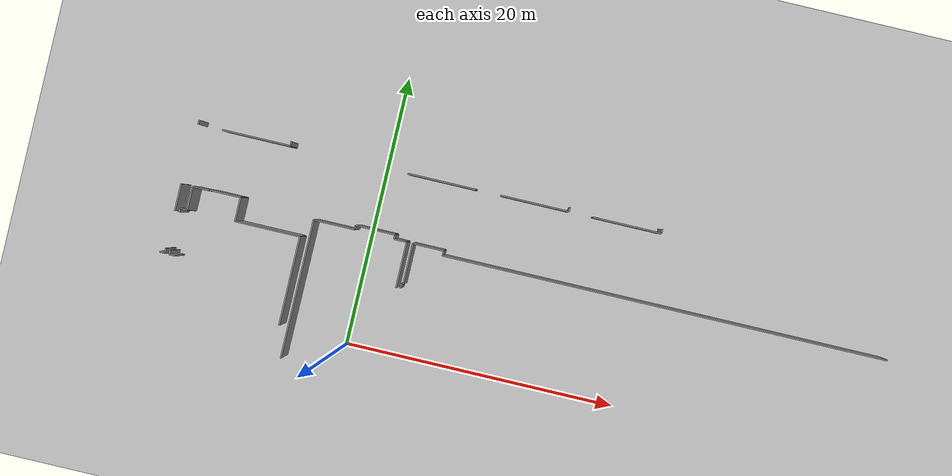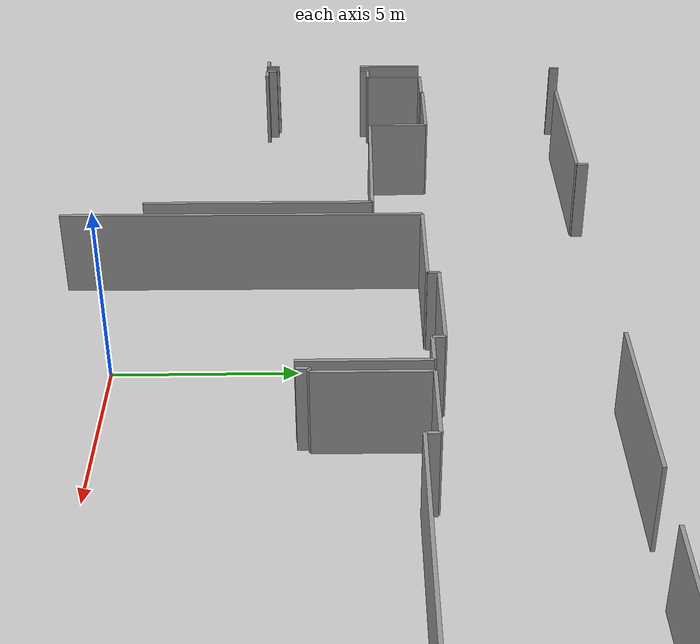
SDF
<sdf version="1.6">
 <world name="default">
  <model name="ground_plane">
   <static>1</static>
   <link name="link">
    <collision name="collision">
     <geometry><plane><normal>0 0 1</normal><size>100 100</size></plane></geometry>
     <surface><friction><ode><mu>100</mu><mu2>50</mu2></ode></friction></surface>
    </collision>
    <visual name="visual">
     <cast_shadows>0</cast_shadows>
     <geometry><plane><normal>0 0 1</normal><size>100 100</size></plane></geometry>
     <material>
      <script><uri>file://media/materials/scripts/gazebo.material</uri><name>Gazebo/Grey</name></script>
     </material>
    </visual>
   </link>
  </model>
  <model name="0510032197_A_40_1_105">
   <static>1</static>
   <link name="Wall_241">
    <collision name="Wall_241_Collision">
     <geometry><box><size>0.334396725937 0.1 2.5</size></box></geometry>
     <pose>0.167198362969 0 1.25 0 0 0</pose>
    </collision>
    <visual name="Wall_241_Visual">
     <pose>0.167198362969 0 1.25 0 0 0</pose>
     <geometry><box><size>0.334396725937 0.1 2.5</size></box></geometry>
     <material>
      <script><uri>file://media/materials/scripts/gazebo.material</uri><name>Gazebo/Grey</name></script>
      <ambient>1 1 1 1</ambient>
     </material>
    </visual>
    <pose>68.585137076 -19.1142490372 0 0 0 1.57079632679</pose>
   </link>
   <link name="Wall_242">
    <collision name="Wall_242_Collision">
     <geometry><box><size>0.142096366248 0.1 2.5</size></box></geometry>
     <pose>0.0710481831238 0 1.25 0 0 0</pose>
    </collision>
    <visual name="Wall_242_Visual">
     <pose>0.0710481831238 0 1.25 0 0 0</pose>
     <geometry><box><size>0.142096366248 0.1 2.5</size></box></geometry>
     <material>
      <script><uri>file://media/materials/scripts/gazebo.material</uri><name>Gazebo/Grey</name></script>
      <ambient>1 1 1 1</ambient>
     </material>
    </visual>
    <pose>68.585137076 -18.7798523113 0 0 0 0.0</pose>
   </link>
   <link name="Wall_243">
    <collision name="Wall_243_Collision">
     <geometry><box><size>3.00829954626 0.1 2.5</size></box></geometry>
     <pose>1.50414977313 0 1.25 0 0 0</pose>
    </collision>
    <visual name="Wall_243_Visual">
     <pose>1.50414977313 0 1.25 0 0 0</pose>
     <geometry><box><size>3.00829954626 0.1 2.5</size></box></geometry>
     <material>
      <script><uri>file://media/materials/scripts/gazebo.material</uri><name>Gazebo/Grey</name></script>
      <ambient>1 1 1 1</ambient>
     </material>
    </visual>
    <pose>68.7272334422 -18.7798523113 0 0 0 1.57079632679</pose>
   </link>
   <link name="Wall_244">
    <collision name="Wall_244_Collision">
     <geometry><box><size>2.28040519071 0.1 2.5</size></box></geometry>
     <pose>1.14020259536 0 1.25 0 0 0</pose>
    </collision>
    <visual name="Wall_244_Visual">
     <pose>1.14020259536 0 1.25 0 0 0</pose>
     <geometry><box><size>2.28040519071 0.1 2.5</size></box></geometry>
     <material>
      <script><uri>file://media/materials/scripts/gazebo.material</uri><name>Gazebo/Grey</name></script>
      <ambient>1 1 1 1</ambient>
     </material>
    </visual>
    <pose>68.7272334422 -15.771552765 0 0 0 0.0</pose>
   </link>
   <link name="Wall_245">
    <collision name="Wall_245_Collision">
     <geometry><box><size>0.358418383559 0.1 2.5</size></box></geometry>
     <pose>0.179209191779 0 1.25 0 0 0</pose>
    </collision>
    <visual name="Wall_245_Visual">
     <pose>0.179209191779 0 1.25 0 0 0</pose>
     <geometry><box><size>0.358418383559 0.1 2.5</size></box></geometry>
     <material>
      <script><uri>file://media/materials/scripts/gazebo.material</uri><name>Gazebo/Grey</name></script>
      <ambient>1 1 1 1</ambient>
     </material>
    </visual>
    <pose>71.0076386329 -15.771552765 0 0 0 -1.57079632679</pose>
   </link>
   <link name="Wall_246">
    <collision name="Wall_246_Collision">
     <geometry><box><size>32.7894355546 0.1 2.5</size></box></geometry>
     <pose>16.3947177773 0 1.25 0 0 0</pose>
    </collision>
    <visual name="Wall_246_Visual">
     <pose>16.3947177773 0 1.25 0 0 0</pose>
     <geometry><box><size>32.7894355546 0.1 2.5</size></box></geometry>
     <material>
      <script><uri>file://media/materials/scripts/gazebo.material</uri><name>Gazebo/Grey</name></script>
      <ambient>1 1 1 1</ambient>
     </material>
    </visual>
    <pose>71.0076386329 -16.1299711486 0 0 0 0.0</pose>
   </link>
   <link name="Wall_266">
    <collision name="Wall_266_Collision">
     <geometry><box><size>3.37841101183 0.1 2.5</size></box></geometry>
     <pose>1.68920550592 0 1.25 0 0 0</pose>
    </collision>
    <visual name="Wall_266_Visual">
     <pose>1.68920550592 0 1.25 0 0 0</pose>
     <geometry><box><size>3.37841101183 0.1 2.5</size></box></geometry>
     <material>
      <script><uri>file://media/materials/scripts/gazebo.material</uri><name>Gazebo/Grey</name></script>
      <ambient>1 1 1 1</ambient>
     </material>
    </visual>
    <pose>68.2809898448 -19.1476759999 0 0 0 1.57079632679</pose>
   </link>
   <link name="Wall_267">
    <collision name="Wall_267_Collision">
     <geometry><box><size>0.937353042108 0.1 2.5</size></box></geometry>
     <pose>0.468676521054 0 1.25 0 0 0</pose>
    </collision>
    <visual name="Wall_267_Visual">
     <pose>0.468676521054 0 1.25 0 0 0</pose>
     <geometry><box><size>0.937353042108 0.1 2.5</size></box></geometry>
     <material>
      <script><uri>file://media/materials/scripts/gazebo.material</uri><name>Gazebo/Grey</name></script>
      <ambient>1 1 1 1</ambient>
     </material>
    </visual>
    <pose>68.2809898448 -15.7692649881 0 0 0 3.14159265359</pose>
   </link>
   <link name="Wall_268">
    <collision name="Wall_268_Collision">
     <geometry><box><size>0.319780373416 0.1 2.5</size></box></geometry>
     <pose>0.159890186708 0 1.25 0 0 0</pose>
    </collision>
    <visual name="Wall_268_Visual">
     <pose>0.159890186708 0 1.25 0 0 0</pose>
     <geometry><box><size>0.319780373416 0.1 2.5</size></box></geometry>
     <material>
      <script><uri>file://media/materials/scripts/gazebo.material</uri><name>Gazebo/Grey</name></script>
      <ambient>1 1 1 1</ambient>
     </material>
    </visual>
    <pose>67.3436368027 -15.7692649881 0 0 0 1.57079632679</pose>
   </link>
   <link name="Wall_269">
    <collision name="Wall_269_Collision">
     <geometry><box><size>2.90102822863 0.1 2.5</size></box></geometry>
     <pose>1.45051411431 0 1.25 0 0 0</pose>
    </collision>
    <visual name="Wall_269_Visual">
     <pose>1.45051411431 0 1.25 0 0 0</pose>
     <geometry><box><size>2.90102822863 0.1 2.5</size></box></geometry>
     <material>
      <script><uri>file://media/materials/scripts/gazebo.material</uri><name>Gazebo/Grey</name></script>
      <ambient>1 1 1 1</ambient>
     </material>
    </visual>
    <pose>67.3436368027 -15.4494846147 0 0 0 3.14159265359</pose>
   </link>
   <link name="Wall_270">
    <collision name="Wall_270_Collision">
     <geometry><box><size>0.303130441414 0.1 2.5</size></box></geometry>
     <pose>0.151565220707 0 1.25 0 0 0</pose>
    </collision>
    <visual name="Wall_270_Visual">
     <pose>0.151565220707 0 1.25 0 0 0</pose>
     <geometry><box><size>0.303130441414 0.1 2.5</size></box></geometry>
     <material>
      <script><uri>file://media/materials/scripts/gazebo.material</uri><name>Gazebo/Grey</name></script>
      <ambient>1 1 1 1</ambient>
     </material>
    </visual>
    <pose>64.4426085741 -15.4494846147 0 0 0 -1.57079632679</pose>
   </link>
   <link name="Wall_271">
    <collision name="Wall_271_Collision">
     <geometry><box><size>3.02228040519 0.1 2.5</size></box></geometry>
     <pose>1.5111402026 0 1.25 0 0 0</pose>
    </collision>
    <visual name="Wall_271_Visual">
     <pose>1.5111402026 0 1.25 0 0 0</pose>
     <geometry><box><size>3.02228040519 0.1 2.5</size></box></geometry>
     <material>
      <script><uri>file://media/materials/scripts/gazebo.material</uri><name>Gazebo/Grey</name></script>
      <ambient>1 1 1 1</ambient>
     </material>
    </visual>
    <pose>64.4426085741 -15.7526150561 0 0 0 3.14159265359</pose>
   </link>
   <link name="Wall_272">
    <collision name="Wall_272_Collision">
     <geometry><box><size>10.2004776654 0.1 2.5</size></box></geometry>
     <pose>5.10023883268 0 1.25 0 0 0</pose>
    </collision>
    <visual name="Wall_272_Visual">
     <pose>5.10023883268 0 1.25 0 0 0</pose>
     <geometry><box><size>10.2004776654 0.1 2.5</size></box></geometry>
     <material>
      <script><uri>file://media/materials/scripts/gazebo.material</uri><name>Gazebo/Grey</name></script>
      <ambient>1 1 1 1</ambient>
     </material>
    </visual>
    <pose>61.4203281689 -15.7526150561 0 0 0 -1.57369952837</pose>
   </link>
   <link name="Wall_274">
    <collision name="Wall_274_Collision">
     <geometry><box><size>0.429720764117 0.1 2.5</size></box></geometry>
     <pose>0.214860382059 0 1.25 0 0 0</pose>
    </collision>
    <visual name="Wall_274_Visual">
     <pose>0.214860382059 0 1.25 0 0 0</pose>
     <geometry><box><size>0.429720764117 0.1 2.5</size></box></geometry>
     <material>
      <script><uri>file://media/materials/scripts/gazebo.material</uri><name>Gazebo/Grey</name></script>
      <ambient>1 1 1 1</ambient>
     </material>
    </visual>
    <pose>52.3396331931 -20.5408050433 0 0 0 3.14159265359</pose>
   </link>
   <link name="Wall_275">
    <collision name="Wall_275_Collision">
     <geometry><box><size>0.309739574728 0.1 2.5</size></box></geometry>
     <pose>0.154869787364 0 1.25 0 0 0</pose>
    </collision>
    <visual name="Wall_275_Visual">
     <pose>0.154869787364 0 1.25 0 0 0</pose>
     <geometry><box><size>0.309739574728 0.1 2.5</size></box></geometry>
     <material>
      <script><uri>file://media/materials/scripts/gazebo.material</uri><name>Gazebo/Grey</name></script>
      <ambient>1 1 1 1</ambient>
     </material>
    </visual>
    <pose>51.909912429 -20.5408050433 0 0 0 1.57079632679</pose>
   </link>
   <link name="Wall_276">
    <collision name="Wall_276_Collision">
     <geometry><box><size>0.263729838966 0.1 2.5</size></box></geometry>
     <pose>0.131864919483 0 1.25 0 0 0</pose>
    </collision>
    <visual name="Wall_276_Visual">
     <pose>0.131864919483 0 1.25 0 0 0</pose>
     <geometry><box><size>0.263729838966 0.1 2.5</size></box></geometry>
     <material>
      <script><uri>file://media/materials/scripts/gazebo.material</uri><name>Gazebo/Grey</name></script>
      <ambient>1 1 1 1</ambient>
     </material>
    </visual>
    <pose>51.909912429 -17.4240902909 0 0 0 1.57079632679</pose>
   </link>
   <link name="Wall_277">
    <collision name="Wall_277_Collision">
     <geometry><box><size>0.515385299762 0.1 2.5</size></box></geometry>
     <pose>0.257692649881 0 1.25 0 0 0</pose>
    </collision>
    <visual name="Wall_277_Visual">
     <pose>0.257692649881 0 1.25 0 0 0</pose>
     <geometry><box><size>0.515385299762 0.1 2.5</size></box></geometry>
     <material>
      <script><uri>file://media/materials/scripts/gazebo.material</uri><name>Gazebo/Grey</name></script>
      <ambient>1 1 1 1</ambient>
     </material>
    </visual>
    <pose>51.909912429 -17.160360452 0 0 0 0.0</pose>
   </link>
   <link name="Wall_278">
    <collision name="Wall_278_Collision">
     <geometry><box><size>1.73095743464 0.1 2.5</size></box></geometry>
     <pose>0.86547871732 0 1.25 0 0 0</pose>
    </collision>
    <visual name="Wall_278_Visual">
     <pose>0.86547871732 0 1.25 0 0 0</pose>
     <geometry><box><size>1.73095743464 0.1 2.5</size></box></geometry>
     <material>
      <script><uri>file://media/materials/scripts/gazebo.material</uri><name>Gazebo/Grey</name></script>
      <ambient>1 1 1 1</ambient>
     </material>
    </visual>
    <pose>52.4252977287 -17.160360452 0 0 0 1.57079632679</pose>
   </link>
   <link name="Wall_279">
    <collision name="Wall_279_Collision">
     <geometry><box><size>1.21442824642 0.1 2.5</size></box></geometry>
     <pose>0.607214123209 0 1.25 0 0 0</pose>
    </collision>
    <visual name="Wall_279_Visual">
     <pose>0.607214123209 0 1.25 0 0 0</pose>
     <geometry><box><size>1.21442824642 0.1 2.5</size></box></geometry>
     <material>
      <script><uri>file://media/materials/scripts/gazebo.material</uri><name>Gazebo/Grey</name></script>
      <ambient>1 1 1 1</ambient>
     </material>
    </visual>
    <pose>52.4252977287 -15.4294030173 0 0 0 0.0</pose>
   </link>
   <link name="Wall_280">
    <collision name="Wall_280_Collision">
     <geometry><box><size>0.0383838127073 0.1 2.5</size></box></geometry>
     <pose>0.0191919063537 0 1.25 0 0 0</pose>
    </collision>
    <visual name="Wall_280_Visual">
     <pose>0.0191919063537 0 1.25 0 0 0</pose>
     <geometry><box><size>0.0383838127073 0.1 2.5</size></box></geometry>
     <material>
      <script><uri>file://media/materials/scripts/gazebo.material</uri><name>Gazebo/Grey</name></script>
      <ambient>1 1 1 1</ambient>
     </material>
    </visual>
    <pose>53.6397259752 -15.4294030173 0 0 0 1.57079632679</pose>
   </link>
   <link name="Wall_281">
    <collision name="Wall_281_Collision">
     <geometry><box><size>2.31332375856 0.1 2.5</size></box></geometry>
     <pose>1.15666187928 0 1.25 0 0 0</pose>
    </collision>
    <visual name="Wall_281_Visual">
     <pose>1.15666187928 0 1.25 0 0 0</pose>
     <geometry><box><size>2.31332375856 0.1 2.5</size></box></geometry>
     <material>
      <script><uri>file://media/materials/scripts/gazebo.material</uri><name>Gazebo/Grey</name></script>
      <ambient>1 1 1 1</ambient>
     </material>
    </visual>
    <pose>53.6397259752 -15.3910192046 0 0 0 0.0</pose>
   </link>
   <link name="Wall_282">
    <collision name="Wall_282_Collision">
     <geometry><box><size>1.75637717815 0.1 2.5</size></box></geometry>
     <pose>0.878188589077 0 1.25 0 0 0</pose>
    </collision>
    <visual name="Wall_282_Visual">
     <pose>0.878188589077 0 1.25 0 0 0</pose>
     <geometry><box><size>1.75637717815 0.1 2.5</size></box></geometry>
     <material>
      <script><uri>file://media/materials/scripts/gazebo.material</uri><name>Gazebo/Grey</name></script>
      <ambient>1 1 1 1</ambient>
     </material>
    </visual>
    <pose>55.9530497337 -15.3910192046 0 0 0 -1.57079632679</pose>
   </link>
   <link name="Wall_283">
    <collision name="Wall_283_Collision">
     <geometry><box><size>4.78488542051 0.1 2.5</size></box></geometry>
     <pose>2.39244271025 0 1.25 0 0 0</pose>
    </collision>
    <visual name="Wall_283_Visual">
     <pose>2.39244271025 0 1.25 0 0 0</pose>
     <geometry><box><size>4.78488542051 0.1 2.5</size></box></geometry>
     <material>
      <script><uri>file://media/materials/scripts/gazebo.material</uri><name>Gazebo/Grey</name></script>
      <ambient>1 1 1 1</ambient>
     </material>
    </visual>
    <pose>55.9530497337 -17.1473963828 0 0 0 0.0</pose>
   </link>
   <link name="Wall_284">
    <collision name="Wall_284_Collision">
     <geometry><box><size>6.54075420379 0.1 2.5</size></box></geometry>
     <pose>3.2703771019 0 1.25 0 0 0</pose>
    </collision>
    <visual name="Wall_284_Visual">
     <pose>3.2703771019 0 1.25 0 0 0</pose>
     <geometry><box><size>6.54075420379 0.1 2.5</size></box></geometry>
     <material>
      <script><uri>file://media/materials/scripts/gazebo.material</uri><name>Gazebo/Grey</name></script>
      <ambient>1 1 1 1</ambient>
     </material>
    </visual>
    <pose>60.7379351542 -17.1473963828 0 0 0 -1.57079632679</pose>
   </link>
   <link name="Wall_297">
    <collision name="Wall_297_Collision">
     <geometry><box><size>1.98515486979 0.1 2.5</size></box></geometry>
     <pose>0.992577434894 0 1.25 0 0 0</pose>
    </collision>
    <visual name="Wall_297_Visual">
     <pose>0.992577434894 0 1.25 0 0 0</pose>
     <geometry><box><size>1.98515486979 0.1 2.5</size></box></geometry>
     <material>
      <script><uri>file://media/materials/scripts/gazebo.material</uri><name>Gazebo/Grey</name></script>
      <ambient>1 1 1 1</ambient>
     </material>
    </visual>
    <pose>51.586319094 -15.4258442532 0 0 0 -1.57079632679</pose>
   </link>
   <link name="Wall_298">
    <collision name="Wall_298_Collision">
     <geometry><box><size>0.36566301046 0.1 2.5</size></box></geometry>
     <pose>0.18283150523 0 1.25 0 0 0</pose>
    </collision>
    <visual name="Wall_298_Visual">
     <pose>0.18283150523 0 1.25 0 0 0</pose>
     <geometry><box><size>0.36566301046 0.1 2.5</size></box></geometry>
     <material>
      <script><uri>file://media/materials/scripts/gazebo.material</uri><name>Gazebo/Grey</name></script>
      <ambient>1 1 1 1</ambient>
     </material>
    </visual>
    <pose>51.586319094 -20.1555688303 0 0 0 -1.57079632679</pose>
   </link>
   <link name="Wall_299">
    <collision name="Wall_299_Collision">
     <geometry><box><size>0.406842994954 0.1 2.5</size></box></geometry>
     <pose>0.203421497477 0 1.25 0 0 0</pose>
    </collision>
    <visual name="Wall_299_Visual">
     <pose>0.203421497477 0 1.25 0 0 0</pose>
     <geometry><box><size>0.406842994954 0.1 2.5</size></box></geometry>
     <material>
      <script><uri>file://media/materials/scripts/gazebo.material</uri><name>Gazebo/Grey</name></script>
      <ambient>1 1 1 1</ambient>
     </material>
    </visual>
    <pose>51.586319094 -20.5212318408 0 0 0 3.14159265359</pose>
   </link>
   <link name="Wall_480">
    <collision name="Wall_480_Collision">
     <geometry><box><size>0.307578896529 0.1 2.5</size></box></geometry>
     <pose>0.153789448264 0 1.25 0 0 0</pose>
    </collision>
    <visual name="Wall_480_Visual">
     <pose>0.153789448264 0 1.25 0 0 0</pose>
     <geometry><box><size>0.307578896529 0.1 2.5</size></box></geometry>
     <material>
      <script><uri>file://media/materials/scripts/gazebo.material</uri><name>Gazebo/Grey</name></script>
      <ambient>1 1 1 1</ambient>
     </material>
    </visual>
    <pose>51.796031978 -10.989590615 0 0 0 1.57079632679</pose>
   </link>
   <link name="Wall_482">
    <collision name="Wall_482_Collision">
     <geometry><box><size>5.01455280316 0.1 2.5</size></box></geometry>
     <pose>2.50727640158 0 1.25 0 0 0</pose>
    </collision>
    <visual name="Wall_482_Visual">
     <pose>2.50727640158 0 1.25 0 0 0</pose>
     <geometry><box><size>5.01455280316 0.1 2.5</size></box></geometry>
     <material>
      <script><uri>file://media/materials/scripts/gazebo.material</uri><name>Gazebo/Grey</name></script>
      <ambient>1 1 1 1</ambient>
     </material>
    </visual>
    <pose>53.5704571741 -10.9926409843 0 0 0 0.0</pose>
   </link>
   <link name="Wall_483">
    <collision name="Wall_483_Collision">
     <geometry><box><size>0.338209687464 0.1 2.5</size></box></geometry>
     <pose>0.169104843732 0 1.25 0 0 0</pose>
    </collision>
    <visual name="Wall_483_Visual">
     <pose>0.169104843732 0 1.25 0 0 0</pose>
     <geometry><box><size>0.338209687464 0.1 2.5</size></box></geometry>
     <material>
      <script><uri>file://media/materials/scripts/gazebo.material</uri><name>Gazebo/Grey</name></script>
      <ambient>1 1 1 1</ambient>
     </material>
    </visual>
    <pose>58.5850099772 -10.9926409843 0 0 0 1.57079632679</pose>
   </link>
   <link name="Wall_488">
    <collision name="Wall_488_Collision">
     <geometry><box><size>5.0343802031 0.1 2.5</size></box></geometry>
     <pose>2.51719010155 0 1.25 0 0 0</pose>
    </collision>
    <visual name="Wall_488_Visual">
     <pose>2.51719010155 0 1.25 0 0 0</pose>
     <geometry><box><size>5.0343802031 0.1 2.5</size></box></geometry>
     <material>
      <script><uri>file://media/materials/scripts/gazebo.material</uri><name>Gazebo/Grey</name></script>
      <ambient>1 1 1 1</ambient>
     </material>
    </visual>
    <pose>67.2298834505 -10.9857776535 0 0 0 0.0</pose>
   </link>
   <link name="Wall_491">
    <collision name="Wall_491_Collision">
     <geometry><box><size>5.05636828124 0.1 2.5</size></box></geometry>
     <pose>2.52818414062 0 1.25 0 0 0</pose>
    </collision>
    <visual name="Wall_491_Visual">
     <pose>2.52818414062 0 1.25 0 0 0</pose>
     <geometry><box><size>5.05636828124 0.1 2.5</size></box></geometry>
     <material>
      <script><uri>file://media/materials/scripts/gazebo.material</uri><name>Gazebo/Grey</name></script>
      <ambient>1 1 1 1</ambient>
     </material>
    </visual>
    <pose>74.0519071163 -10.9862860484 0 0 0 0.0</pose>
   </link>
   <link name="Wall_492">
    <collision name="Wall_492_Collision">
     <geometry><box><size>0.309866673445 0.1 2.5</size></box></geometry>
     <pose>0.154933336723 0 1.25 0 0 0</pose>
    </collision>
    <visual name="Wall_492_Visual">
     <pose>0.154933336723 0 1.25 0 0 0</pose>
     <geometry><box><size>0.309866673445 0.1 2.5</size></box></geometry>
     <material>
      <script><uri>file://media/materials/scripts/gazebo.material</uri><name>Gazebo/Grey</name></script>
      <ambient>1 1 1 1</ambient>
     </material>
    </visual>
    <pose>79.1082753975 -10.9862860484 0 0 0 1.57079632679</pose>
   </link>
   <link name="Wall_494">
    <collision name="Wall_494_Collision">
     <geometry><box><size>5.02904205697 0.1 2.5</size></box></geometry>
     <pose>2.51452102848 0 1.25 0 0 0</pose>
    </collision>
    <visual name="Wall_494_Visual">
     <pose>2.51452102848 0 1.25 0 0 0</pose>
     <geometry><box><size>5.02904205697 0.1 2.5</size></box></geometry>
     <material>
      <script><uri>file://media/materials/scripts/gazebo.material</uri><name>Gazebo/Grey</name></script>
      <ambient>1 1 1 1</ambient>
     </material>
    </visual>
    <pose>80.8818109025 -10.9875570355 0 0 0 0.0</pose>
   </link>
   <link name="Wall_495">
    <collision name="Wall_495_Collision">
     <geometry><box><size>0.311137660621 0.1 2.5</size></box></geometry>
     <pose>0.155568830311 0 1.25 0 0 0</pose>
    </collision>
    <visual name="Wall_495_Visual">
     <pose>0.155568830311 0 1.25 0 0 0</pose>
     <geometry><box><size>0.311137660621 0.1 2.5</size></box></geometry>
     <material>
      <script><uri>file://media/materials/scripts/gazebo.material</uri><name>Gazebo/Grey</name></script>
      <ambient>1 1 1 1</ambient>
     </material>
    </visual>
    <pose>85.9108529595 -10.9875570355 0 0 0 1.57079632679</pose>
   </link>
   <pose>-65.5 24.1613162343 0 0 0 0</pose>
  </model>
 </world>
</sdf>
